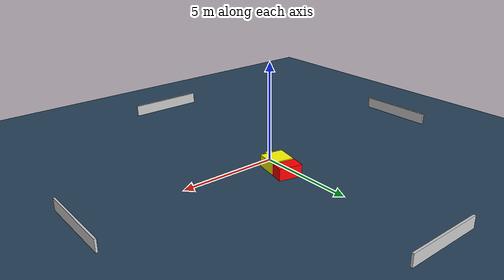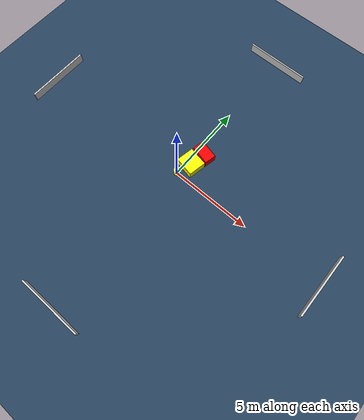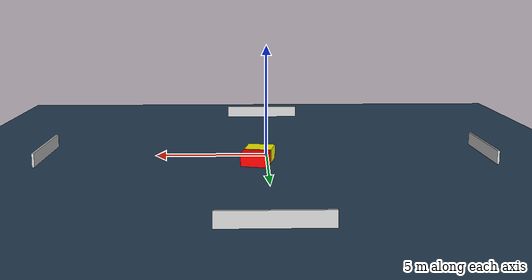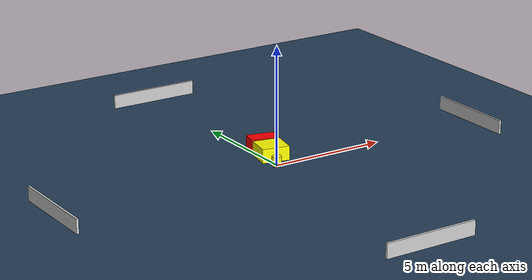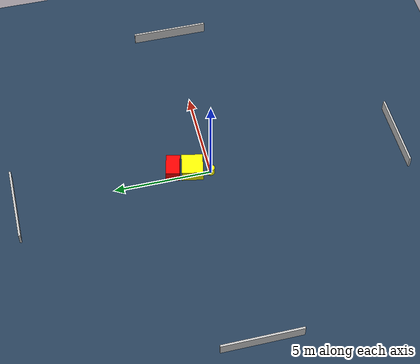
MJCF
<?xml version="1.0" ?>
<mujoco model="generated_environment">
  <option timestep="0.01" integrator="RK4" cone="elliptic"/>
  <default>
    <geom density="1"/>
  </default>
  <asset>
    <texture builtin="gradient" height="3072" name="skybox" rgb1="0.3 0.5 0.7" rgb2="0 0 0" type="skybox" width="512"/>
    <texture builtin="checker" height="300" name="groundplane" rgb1="0.2 0.3 0.4" rgb2="0.1 0.2 0.3" type="2d" width="300"/>
    <material name="groundplane" reflectance="0.2" texrepeat="5 5" texture="groundplane"/>
  </asset>
  <worldbody>
    <light dir="0 0 -1" directional="true" pos="0 0 1.5"/>
    <geom condim="3" friction="0.5 0.005 0.001" material="groundplane" name="floor" pos="0 0 0" size="0 0 0.05" type="plane"/>
    <body name="walls">
      <geom name="wall_1" condim="4" pos="-10.0 0.0 0.3" rgba="0.800000011920929 0.800000011920929 0.800000011920929 1.0" size="0.05 2.0 0.3" type="box"/>
      <geom name="wall_2" condim="4" pos="10.0 0.0 0.3" rgba="0.800000011920929 0.800000011920929 0.800000011920929 1.0" size="0.05 2.0 0.3" type="box"/>
      <geom name="wall_3" condim="4" pos="0.0 -10.0 0.3" rgba="0.800000011920929 0.800000011920929 0.800000011920929 1.0" size="2.0 0.05 0.3" type="box"/>
      <geom name="wall_4" condim="4" pos="0.0 10.0 0.3" rgba="0.800000011920929 0.800000011920929 0.800000011920929 1.0" size="2.0 0.05 0.3" type="box"/>
    </body>
    <body name="robot">
      <joint name="joint_x" type="slide" pos="0 0 0" axis="1 0 0"/>
      <joint name="joint_y" type="slide" pos="0 0 0" axis="0 1 0"/>
      <geom name="robot" type="cylinder" pos="0.0 0.0 0.2" size="0.2 0.2 0.0" mass="5.0" friction="1.0 0.005 0.0001" condim="4" rgba="1.0 1.0 0.0 1.0"/>
    </body>
    <body name="obstacle_1_movable">
      <geom name="obstacle_1_movable" condim="4" pos="0.32019481963733715 0.9002170835222709 0.3" euler="0 0 348.97050643973625" friction="0.0 0.005 0.001" rgba="1.0 1.0 0.0 1.0" size="0.5923467803724193 0.5452177435698973 0.3" type="box" mass="0.1"/>
      <joint type="free"/>
    </body>
    <body name="obstacle_2_static">
      <geom name="obstacle_2_static" condim="4" pos="0.5197852558574512 1.8712688685664454 0.3" euler="0 0 76.64945996504196" friction="0.0 0.005 0.001" rgba="1.0 0.0 0.0 1.0" size="0.3560948024622498 0.5904867941878975 0.3" type="box"/>
    </body>
  </worldbody>
  <actuator>
    <motor name="actuator_x" joint="joint_x" gear="1" ctrlrange="-1 1"/>
    <motor name="actuator_y" joint="joint_y" gear="1" ctrlrange="-1 1"/>
  </actuator>
</mujoco>
